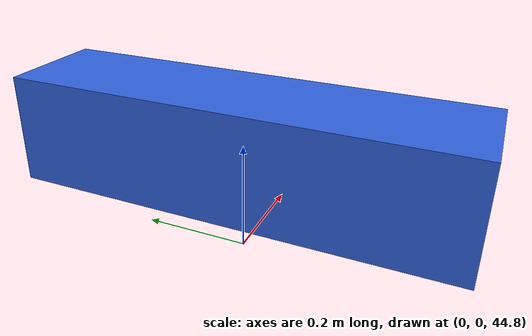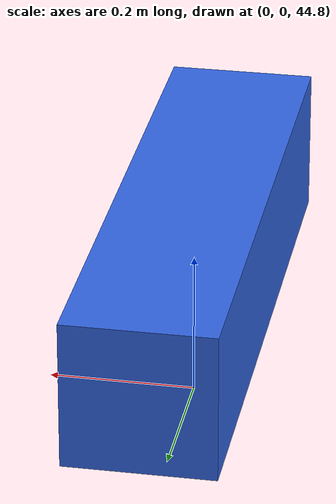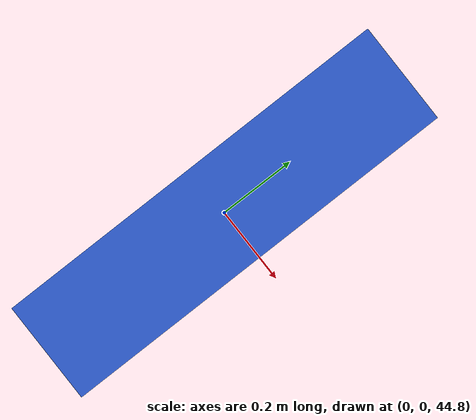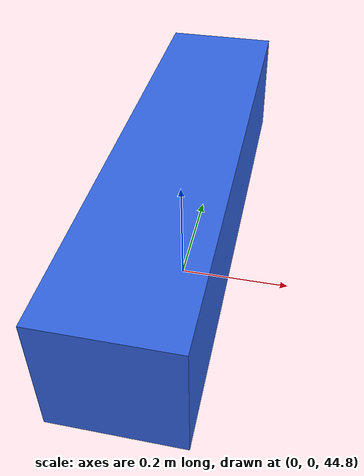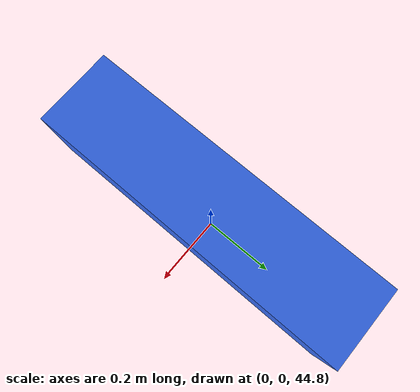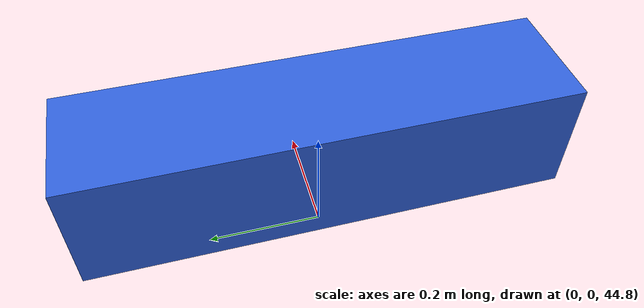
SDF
<sdf version="1.6">
  <world name="default">
  <physics name="1ms" type="ignored">
    <max_step_size>0.001</max_step_size>
    <real_time_factor>1.0</real_time_factor>
  </physics>

  <plugin
    filename="gz-sim-physics-system"
    name="gz::sim::systems::Physics">
  </plugin>
  <plugin
    filename="gz-sim-user-commands-system"
    name="gz::sim::systems::UserCommands">
  </plugin>
  <plugin
    filename="gz-sim-scene-broadcaster-system"
    name="gz::sim::systems::SceneBroadcaster">
  </plugin>
  <plugin
    filename="gz-sim-sensors-system"
    name="gz::sim::systems::Sensors">
    <render_engine>ogre2</render_engine>
  </plugin>

  <gui fullscreen='0'>
      <camera name='user_camera'>
        <pose>-3.049776 -0.241982 38.020702 0 1.511954 -0.003112</pose>
        <view_controller>orbit</view_controller>
        <projection_type>perspective</projection_type>
      </camera>
  </gui>

  <scene>
    <ambient>0.4 0.4 0.4 1</ambient>
    <background>0.7 0.7 0.7 1</background>
    <shadows>0</shadows>
  </scene>

  <model name='top_camera'> <!-- 모델의 이름 -->
      <link name='top_camera_link'> <!-- 링크 정의 -->
        <inertial>
          <mass>1</mass>
          <inertia>
            <ixx>0.166667</ixx>
            <ixy>0</ixy>
            <ixz>0</ixz>
            <iyy>0.166667</iyy>
            <iyz>0</iyz>
            <izz>0.166667</izz>
          </inertia>
          <pose>0 0 0 0 0 1.57</pose> <!-- 카메라 박스 위치 조정 -->
        </inertial>
        <pose>0 0 0 0 -0 0</pose>
        <gravity>1</gravity>
        <self_collide>0</self_collide>
        <kinematic>0</kinematic>
        <enable_wind>0</enable_wind>
        <visual name='visual'>
          <pose>0 0 0 0 0 1.57</pose> <!-- 카메라 박스 위치 조정 -->
          <geometry>
            <box>
              <size>0.8 0.2 0.2</size>
            </box>
          </geometry>
          <material>
            <lighting>1</lighting>
            <ambient>0.15 0.25 0.65 1</ambient>
            <diffuse>0.2 0.4 0.9 1</diffuse>
            <specular>0.02 0.02 0.02 1</specular>
            <emissive>0.02 0.02 0.08 1</emissive>
          </material>
          <transparency>0</transparency>
          <cast_shadows>0</cast_shadows>
        </visual>
        <collision name='collision'>
          <laser_retro>0</laser_retro>
          <max_contacts>10</max_contacts>
          <pose>0 0 0 0 0 1.57</pose> <!-- 카메라 박스 위치 조정 -->
          <geometry>
            <box>
              <size>0.8 0.2 0.2</size>
            </box>
          </geometry>
          <surface>
            <friction>
              <ode>
                <mu>1</mu>
                <mu2>1</mu2>
                <fdir1>0 0 0</fdir1>
                <slip1>0</slip1>
                <slip2>0</slip2>
              </ode>
              <torsional>
                <coefficient>1</coefficient>
                <patch_radius>0</patch_radius>
                <surface_radius>0</surface_radius>
                <use_patch_radius>1</use_patch_radius>
                <ode>
                  <slip>0</slip>
                </ode>
              </torsional>
            </friction>
            <bounce>
              <restitution_coefficient>0</restitution_coefficient>
              <threshold>1e+06</threshold>
            </bounce>
            <contact>
              <collide_without_contact>0</collide_without_contact>
              <collide_without_contact_bitmask>1</collide_without_contact_bitmask>
              <collide_bitmask>1</collide_bitmask>
              <ode>
                <soft_cfm>0</soft_cfm>
                <soft_erp>0.2</soft_erp>
                <kp>1e+13</kp>
                <kd>1</kd>
                <max_vel>0.01</max_vel>
                <min_depth>0</min_depth>
              </ode>
              <bullet>
                <split_impulse>1</split_impulse>
                <split_impulse_penetration_threshold>-0.01</split_impulse_penetration_threshold>
                <soft_cfm>0</soft_cfm>
                <soft_erp>0.2</soft_erp>
                <kp>1e+13</kp>
                <kd>1</kd>
              </bullet>
            </contact>
          </surface>
        </collision>

        <sensor name='top_camera' type='camera'>
          <pose>0 0 0 0 0 0</pose>
          <update_rate>30</update_rate>
          <visualize>0</visualize>
          <topic>top_camera</topic>
          <camera name='head'>
            <horizontal_fov>1.10</horizontal_fov>
            <image>
              <width>640</width> <!-- 위성캠 사이즈 조정 -->
              <height>480</height>
              <format>R8G8B8</format>
            </image>
            <clip>
              <near>0.03</near>
              <far>200</far>
            </clip>
            <noise>
              <type>gaussian</type>
              <mean>0</mean>
              <stddev>0.007</stddev>
            </noise>
          </camera>
        </sensor>
      </link>
      <static>1</static>
      <allow_auto_disable>1</allow_auto_disable>
      <pose>0 0 45.0 0 1.57 3.14159</pose> <!-- 카메라 프레임의 위치 조정 -->
    </model>

    <model name="ground">
      <pose>0 0 0 0 0 1.57</pose>
      <static>1</static>

      <link name="ground">
        <collision name="ground_collision">
          <geometry>
            <plane>
              <normal>0 0 1</normal>
              <size>58.1364 43.71084</size>
            </plane>
          </geometry>
          <surface>
            <contact>
              <ode/>
            </contact>
          </surface>
        </collision>

        <visual name="ground_visual">
          <geometry>
            <plane>
              <normal>0 0 1</normal>
              <size>58.1364 43.71084</size>
            </plane>
          </geometry>

          <material>
            <ambient>1 1 1 1</ambient>
            <diffuse>1 1 1 1</diffuse>
            <specular>0.1 0.1 0.1 1</specular>
            <pbr>
              <metal>
                <albedo_map>model://race_track/materials/textures/track.png</albedo_map>
                <roughness>1.0</roughness>
                <metalness>0.0</metalness>
              </metal>
            </pbr>
          </material>
        </visual>
      </link>
    </model>

    <light name='sun' type='directional'>
      <pose>0 0 10 0 -0 0</pose>           <direction>-0.5 0.1 -0.9</direction> <diffuse>1.0 1.0 1.0 1</diffuse>   <specular>0.5 0.5 0.5 1</specular>   <attenuation>
        <range>1000</range>
        <constant>0.9</constant>
        <linear>0.01</linear>
        <quadratic>0.001</quadratic>
      </attenuation>
      <cast_shadows>0</cast_shadows> </light>

  </world>
</sdf>
